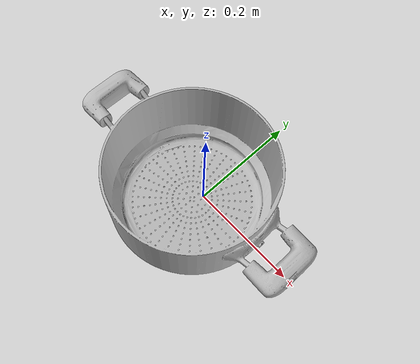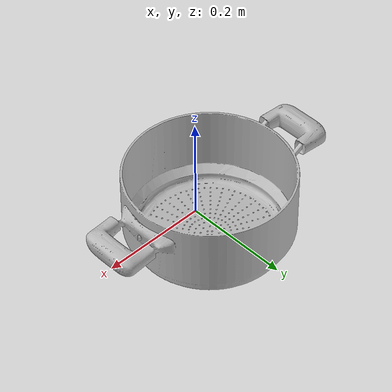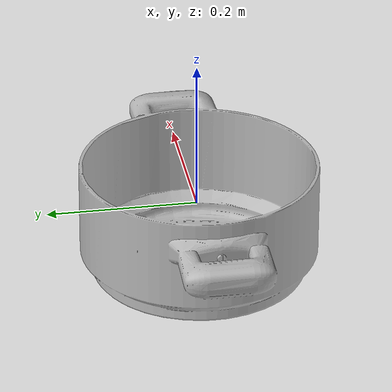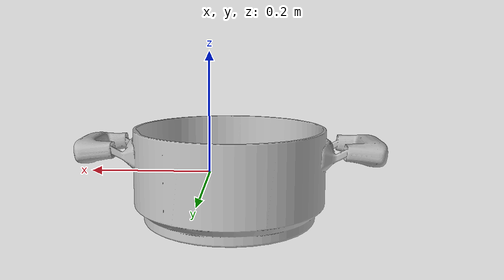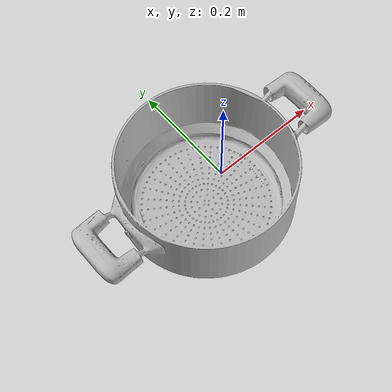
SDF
<?xml version="1.0" ?>
<sdf version="1.5">
  <model name="cooking_pot">
    <static>false</static>
    <link name="link">
      <collision name="collision">
        <pose>0 0 0 0 0 0</pose>
        <geometry>
          <mesh>
            <uri>model://cooking_pot/meshes/cooking_pot.stl</uri>
          </mesh>
        </geometry>
        <surface>
          <friction>
            <ode>
              <mu>1.0</mu>
              <mu2>1.0</mu2>
            </ode>
          </friction>
          <contact>
            <ode>
              <kp>10000000.0</kp>
              <kd>1.0</kd>
              <min_depth>0.001</min_depth>
              <max_vel>0.1</max_vel>
            </ode>
          </contact>
        </surface>
      </collision>
      <visual name="visual">
        <pose>0 0 0 0 0 0</pose>
        <geometry>
          <mesh>
            <uri>model://cooking_pot/meshes/cooking_pot.stl</uri>
          </mesh>
        </geometry>
      </visual>
    </link>
  </model>
</sdf>
